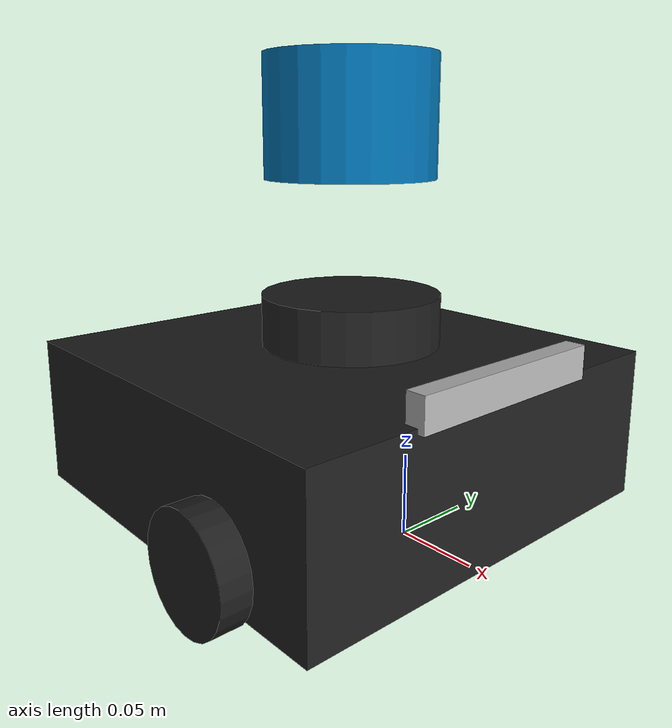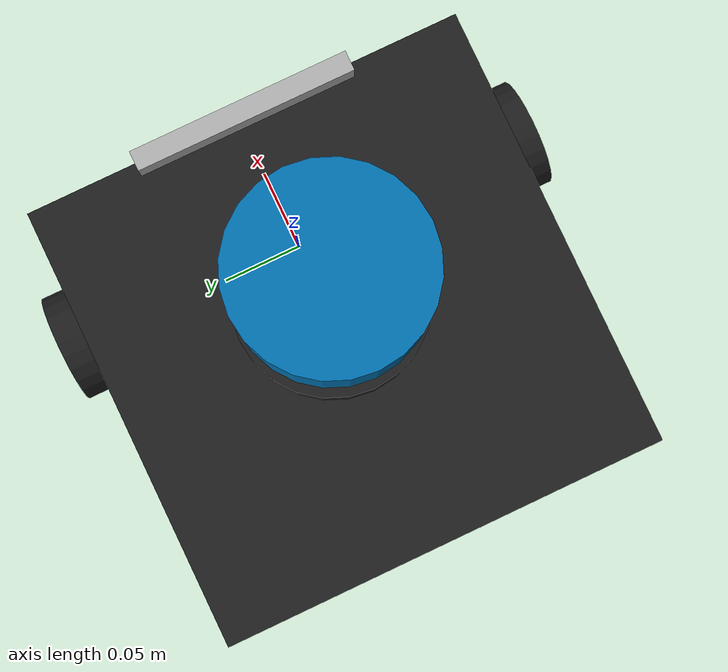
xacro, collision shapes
<?xml version="1.0"?>
<robot xmlns:xacro="http://www.ros.org/wiki/xacro" name="example">
  <xacro:arg name="gpu" default="true"/>
  <xacro:property name="gpu" value="$(arg gpu)" />
  <xacro:arg name="organize_cloud" default="false"/>
  <xacro:property name="organize_cloud" value="$(arg organize_cloud)" />

  <xacro:include filename="$(find velodyne_description)/urdf/turtlebot3_description/urdf/turtlebot3_waffle.urdf.xacro"/>

  <xacro:include filename="$(find velodyne_description)/urdf/VLP-16-IMU.urdf.xacro"/>
  <xacro:VLP-16 parent="base_link" name="velodyne" topic="/velodyne_points" organize_cloud="${organize_cloud}" hz="10" samples="220" gpu="${gpu}">
    <origin xyz="-0.05 0 0.2" rpy="0 0 0" />
  </xacro:VLP-16>

</robot>

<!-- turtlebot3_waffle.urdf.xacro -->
<robot name="turtlebot3_waffle" xmlns:xacro="http://ros.org/wiki/xacro">
  <xacro:include filename="$(find turtlebot3_description)/urdf/common_properties.xacro"/>
  <xacro:include filename="$(find ouster_description)/urdf/turtlebot3_description/urdf/turtlebot3_waffle.gazebo.xacro"/>

  <xacro:property name="r200_cam_rgb_px" value="0.005"/>
  <xacro:property name="r200_cam_rgb_py" value="0.018"/>
  <xacro:property name="r200_cam_rgb_pz" value="0.013"/>
  <xacro:property name="r200_cam_depth_offset" value="0.01"/>

  <link name="base_footprint"/>

  <joint name="base_joint" type="fixed">
    <parent link="base_footprint"/>
    <child link="base_link" />
    <origin xyz="0 0 0.010" rpy="0 0 0"/>
  </joint>

  <link name="base_link">
    <visual>
      <origin xyz="-0.064 0 0.0" rpy="0 0 0"/>
      <geometry>
        <mesh filename="package://turtlebot3_description/meshes/bases/waffle_base.stl" scale="0.001 0.001 0.001"/>
      </geometry>
      <material name="light_black"/>
    </visual>

    <collision>
      <origin xyz="-0.064 0 0.047" rpy="0 0 0"/>
      <geometry>
        <box size="0.266 0.266 0.094"/>
      </geometry>
    </collision>

    <inertial>
      <origin xyz="0 0 0" rpy="0 0 0"/>
      <mass value="1.3729096e+00"/>
      <inertia ixx="8.7002718e-03" ixy="-4.7576583e-05" ixz="1.1160499e-04"
               iyy="8.6195418e-03" iyz="-3.5422299e-06"
               izz="1.4612727e-02" />
    </inertial>
  </link>

  <joint name="wheel_left_joint" type="continuous">
    <parent link="base_link"/>
    <child link="wheel_left_link"/>
    <origin xyz="0.0 0.144 0.023" rpy="-1.57 0 0"/>
    <axis xyz="0 0 1"/>
  </joint>

  <link name="wheel_left_link">
    <visual>
      <origin xyz="0 0 0" rpy="1.57 0 0"/>
      <geometry>
        <mesh filename="package://turtlebot3_description/meshes/wheels/left_tire.stl" scale="0.001 0.001 0.001"/>
      </geometry>
      <material name="dark"/>
    </visual>

    <collision>
      <origin xyz="0 0 0" rpy="0 0 0"/>
      <geometry>
        <cylinder length="0.018" radius="0.033"/>
      </geometry>
    </collision>

    <inertial>
      <origin xyz="0 0 0" />
      <mass value="2.8498940e-02" />
      <inertia ixx="1.1175580e-05" ixy="-4.2369783e-11" ixz="-5.9381719e-09"
               iyy="1.1192413e-05" iyz="-1.4400107e-11"
               izz="2.0712558e-05" />
      </inertial>
  </link>

  <joint name="wheel_right_joint" type="continuous">
    <parent link="base_link"/>
    <child link="wheel_right_link"/>
    <origin xyz="0.0 -0.144 0.023" rpy="-1.57 0 0"/>
    <axis xyz="0 0 1"/>
  </joint>

  <link name="wheel_right_link">
    <visual>
      <origin xyz="0 0 0" rpy="1.57 0 0"/>
      <geometry>
        <mesh filename="package://turtlebot3_description/meshes/wheels/right_tire.stl" scale="0.001 0.001 0.001"/>
      </geometry>
      <material name="dark"/>
    </visual>

    <collision>
      <origin xyz="0 0 0" rpy="0 0 0"/>
      <geometry>
        <cylinder length="0.018" radius="0.033"/>
      </geometry>
    </collision>

    <inertial>
      <origin xyz="0 0 0" />
      <mass value="2.8498940e-02" />
      <inertia ixx="1.1175580e-05" ixy="-4.2369783e-11" ixz="-5.9381719e-09"
               iyy="1.1192413e-05" iyz="-1.4400107e-11"
               izz="2.0712558e-05" />
      </inertial>
  </link>

  <joint name="caster_back_right_joint" type="fixed">
    <parent link="base_link"/>
    <child link="caster_back_right_link"/>
    <origin xyz="-0.177 -0.064 -0.004" rpy="-1.57 0 0"/>
  </joint>

  <link name="caster_back_right_link">
    <collision>
      <origin xyz="0 0.001 0" rpy="0 0 0"/>
      <geometry>
        <box size="0.030 0.009 0.020"/>
      </geometry>
    </collision>

    <inertial>
      <origin xyz="0 0 0" />
      <mass value="0.005" />
      <inertia ixx="0.001" ixy="0.0" ixz="0.0"
               iyy="0.001" iyz="0.0"
               izz="0.001" />
    </inertial>
  </link>

  <joint name="caster_back_left_joint" type="fixed">
    <parent link="base_link"/>
    <child link="caster_back_left_link"/>
    <origin xyz="-0.177 0.064 -0.004" rpy="-1.57 0 0"/>
  </joint>

  <link name="caster_back_left_link">
    <collision>
      <origin xyz="0 0.001 0" rpy="0 0 0"/>
      <geometry>
        <box size="0.030 0.009 0.020"/>
      </geometry>
    </collision>

    <inertial>
      <origin xyz="0 0 0" />
      <mass value="0.005" />
      <inertia ixx="0.001" ixy="0.0" ixz="0.0"
               iyy="0.001" iyz="0.0"
               izz="0.001" />
    </inertial>
  </link>

  <joint name="scan_joint" type="fixed">
    <parent link="base_link"/>
    <child link="base_scan"/>
    <origin xyz="-0.064 0 0.122" rpy="0 0 0"/>
  </joint>

  <link name="base_scan">
    <visual>
      <origin xyz="0 0 0" rpy="0 0 0"/>
      <geometry>
        <mesh filename="package://turtlebot3_description/meshes/sensors/lds.stl" scale="0.001 0.001 0.001"/>
      </geometry>
      <material name="dark"/>
    </visual>

    <collision>
      <origin xyz="0.015 0 -0.0065" rpy="0 0 0"/>
      <geometry>
        <cylinder length="0.0315" radius="0.055"/>
      </geometry>
    </collision>

    <inertial>
      <mass value="0.114" />
      <origin xyz="0 0 0" />
      <inertia ixx="0.001" ixy="0.0" ixz="0.0"
               iyy="0.001" iyz="0.0"
               izz="0.001" />
    </inertial>
  </link>

  <joint name="camera_joint" type="fixed">
    <origin xyz="0.064 -0.065 0.094" rpy="0 0 0"/>
    <parent link="base_link"/>
    <child link="camera_link"/>
  </joint>

  <link name="camera_link">
    <visual>
     <origin xyz="0 0 0" rpy="1.57 0 1.57"/>
      <geometry>
       <mesh filename="package://turtlebot3_description/meshes/sensors/r200.dae" />
      </geometry>
    </visual>
    <collision>
      <origin xyz="0.003 0.065 0.007" rpy="0 0 0"/>
      <geometry>
        <box size="0.012 0.132 0.020"/>
      </geometry>
    </collision>

    <!-- This inertial field needs doesn't contain reliable data!! -->
  </link>

  <joint name="camera_rgb_joint" type="fixed">
    <origin xyz="${r200_cam_rgb_px} ${r200_cam_rgb_py} ${r200_cam_rgb_pz}" rpy="0 0 0"/>
    <parent link="camera_link"/>
    <child link="camera_rgb_frame"/>
  </joint>
  <link name="camera_rgb_frame"/>

  <joint name="camera_rgb_optical_joint" type="fixed">
    <origin xyz="0 0 0" rpy="-1.57 0 -1.57"/>
    <parent link="camera_rgb_frame"/>
    <child link="camera_rgb_optical_frame"/>
  </joint>
  <link name="camera_rgb_optical_frame"/>

  <joint name="camera_depth_joint" type="fixed">
    <origin xyz="${r200_cam_rgb_px} ${r200_cam_rgb_py + r200_cam_depth_offset} ${r200_cam_rgb_pz}" rpy="0 0 0"/>
    <parent link="camera_link"/>
    <child link="camera_depth_frame"/>
  </joint>
  <link name="camera_depth_frame"/>

  <joint name="camera_depth_optical_joint" type="fixed">
    <origin xyz="0 0 0" rpy="-1.57 0 -1.57"/>
    <parent link="camera_depth_frame"/>
    <child link="camera_depth_optical_frame"/>
  </joint>
  <link name="camera_depth_optical_frame"/>

</robot>

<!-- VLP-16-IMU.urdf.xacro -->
<robot xmlns:xacro="http://www.ros.org/wiki/xacro" name="VLP-16">
  <xacro:property name="M_PI" value="3.1415926535897931" />
  <xacro:macro name="VLP-16" params="*origin parent:=base_link name:=velodyne topic:=/velodyne_points organize_cloud:=false hz:=10 lasers:=16 samples:=1875 collision_range:=0.3 min_range:=0.9 max_range:=130.0 noise:=0.008 min_angle:=-${M_PI} max_angle:=${M_PI} gpu:=false imu_link:=vlp_imu topic_imu:=/imu/data">

    <joint name="${name}_base_mount_joint" type="fixed">
      <xacro:insert_block name="origin" />
      <parent link="${parent}"/>
      <child link="${name}_base_link"/>
    </joint>

    <link name="${name}_base_link">
      <inertial>
        <mass value="0.83"/>
        <origin xyz="0 0 0.03585"/>
        <inertia ixx="${(0.83 * (3.0*0.0516*0.0516 + 0.0717*0.0717)) / 12.0}" ixy="0" ixz="0"
          iyy="${(0.83 * (3.0*0.0516*0.0516 + 0.0717*0.0717)) / 12.0}" iyz="0"
          izz="${0.5 * 0.83 * (0.0516*0.0516)}"/>
      </inertial>
      <visual>
        <geometry>
          <mesh filename="package://velodyne_description/meshes/VLP16_base_1.dae" />
        </geometry>
      </visual>
      <visual>
        <geometry>
          <mesh filename="package://velodyne_description/meshes/VLP16_base_2.dae" />
        </geometry>
      </visual>
      <collision>
        <origin rpy="0 0 0" xyz="0 0 0.03585"/>
        <geometry>
          <cylinder radius="0.0516" length="0.0717"/>
        </geometry>
      </collision>
    </link>

    <joint name="${name}_base_scan_joint" type="fixed" >
      <origin xyz="0 0 0.0377" rpy="0 0 0" />
      <parent link="${name}_base_link" />
      <child link="${name}"/>
    </joint>

    <link name="${name}">
      <inertial>
        <mass value="0.01"/>
        <origin xyz="0 0 0"/>
        <inertia ixx="1e-7" ixy="0" ixz="0" iyy="1e-7" iyz="0" izz="1e-7"/>
      </inertial>
      <visual>
        <origin xyz="0 0 -0.0377" />
        <geometry>
          <mesh filename="package://velodyne_description/meshes/VLP16_scan.dae" />
        </geometry>
      </visual>
    </link>

    <!-- Gazebo requires the velodyne_gazebo_plugins package -->
    <gazebo reference="${name}">
      <xacro:if value="${gpu}">
        <sensor type="gpu_ray" name="${name}-VLP16">
          <pose>0 0 0 0 0 0</pose>
          <visualize>false</visualize>
          <update_rate>${hz}</update_rate>
          <ray>
            <scan>
              <horizontal>
                <samples>${samples}</samples>
                <resolution>1</resolution>
                <min_angle>${min_angle}</min_angle>
                <max_angle>${max_angle}</max_angle>
              </horizontal>
              <vertical>
                <samples>${lasers}</samples>
                <resolution>1</resolution>
                <min_angle>-${15.0*M_PI/180.0}</min_angle>
                <max_angle> ${15.0*M_PI/180.0}</max_angle>
              </vertical>
            </scan>
            <range>
              <min>${collision_range}</min>
              <max>${max_range+1}</max>
              <resolution>0.001</resolution>
            </range>
            <noise>
              <type>gaussian</type>
              <mean>0.0</mean>
              <stddev>0.0</stddev>
            </noise>
          </ray>
          <plugin name="gazebo_ros_laser_controller" filename="libgazebo_ros_velodyne_gpu_laser.so">
            <topicName>${topic}</topicName>
            <frameName>${name}</frameName>
            <organize_cloud>${organize_cloud}</organize_cloud>
            <min_range>${min_range}</min_range>
            <max_range>${max_range}</max_range>
            <gaussianNoise>${noise}</gaussianNoise>
          </plugin>
        </sensor>
      </xacro:if>
      <xacro:unless value="${gpu}">
        <sensor type="ray" name="${name}-VLP16">
          <pose>0 0 0 0 0 0</pose>
          <visualize>false</visualize>
          <update_rate>${hz}</update_rate>
          <ray>
            <scan>
              <horizontal>
                <samples>${samples}</samples>
                <resolution>1</resolution>
                <min_angle>${min_angle}</min_angle>
                <max_angle>${max_angle}</max_angle>
              </horizontal>
              <vertical>
                <samples>${lasers}</samples>
                <resolution>1</resolution>
                <min_angle>-${15.0*M_PI/180.0}</min_angle>
                <max_angle> ${15.0*M_PI/180.0}</max_angle>
              </vertical>
            </scan>
            <range>
              <min>${collision_range}</min>
              <max>${max_range+1}</max>
              <resolution>0.001</resolution>
            </range>
            <noise>
              <type>gaussian</type>
              <mean>0.0</mean>
              <stddev>0.0</stddev>
            </noise>
          </ray>
          <plugin name="gazebo_ros_laser_controller" filename="libgazebo_ros_velodyne_laser.so">
            <topicName>${topic}</topicName>
            <frameName>${name}</frameName>
            <organize_cloud>${organize_cloud}</organize_cloud>
            <min_range>${min_range}</min_range>
            <max_range>${max_range}</max_range>
            <gaussianNoise>${noise}</gaussianNoise>
          </plugin>
        </sensor>
      </xacro:unless>
    </gazebo>

    <link name="${imu_link}" />

    <joint name="${name}_imu_link_joint" type="fixed">
      <parent link="${name}" />
      <child link="${imu_link}" />
      <origin xyz="0.006253 -0.011775 0.007645" rpy="0 0 0" />
    </joint>
    <gazebo reference="${imu_link}">
    </gazebo>

    <!-- IMU -->
  <gazebo>
    <plugin name="imu_controller" filename="libhector_gazebo_ros_imu.so">
      <robotNamespace>/</robotNamespace>
      <updateRate>100.0</updateRate>
      <bodyName>${imu_link}</bodyName>
      <topicName>${topic_imu}</topicName>
      <accelDrift>0.005 0.005 0.005</accelDrift>
      <accelGaussianNoise>0.005 0.005 0.005</accelGaussianNoise>
      <rateDrift>0.005 0.005 0.005 </rateDrift>
      <rateGaussianNoise>0.005 0.005 0.005 </rateGaussianNoise>
      <headingDrift>0.005</headingDrift>
      <headingGaussianNoise>0.005</headingGaussianNoise>
    </plugin>
  </gazebo>

  </xacro:macro>
</robot>
